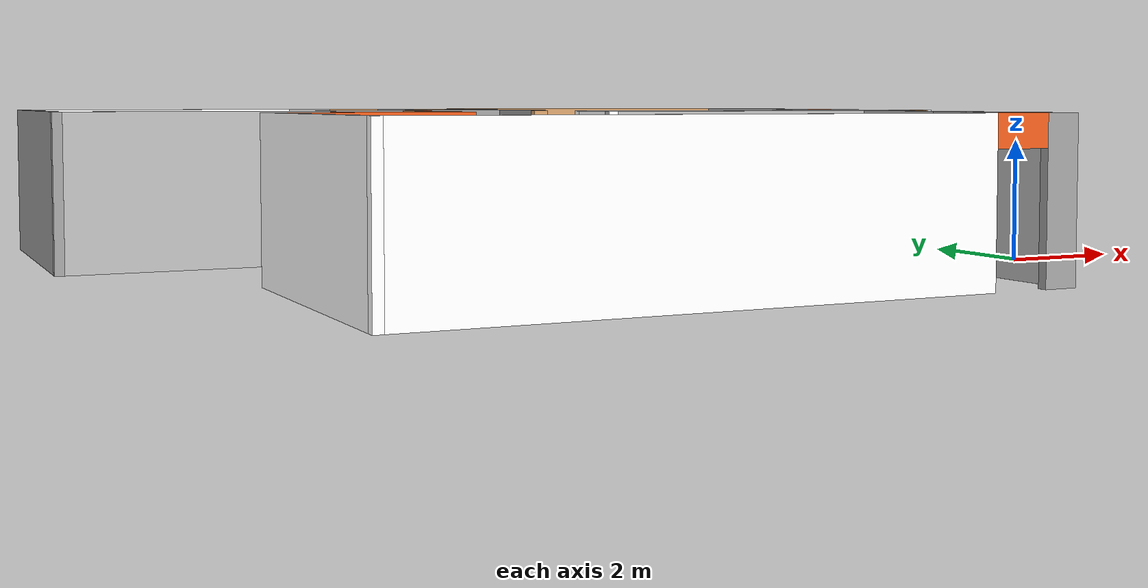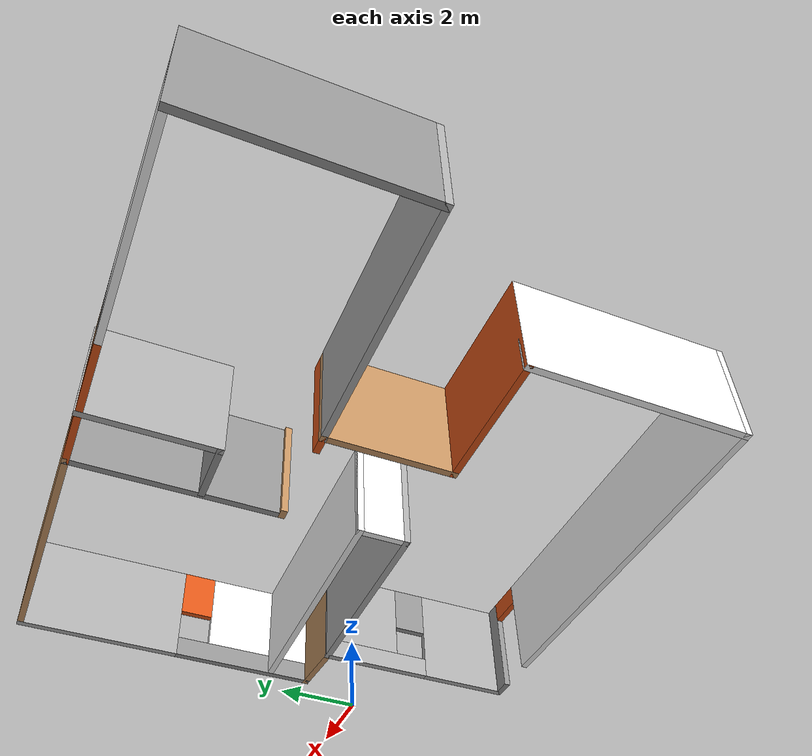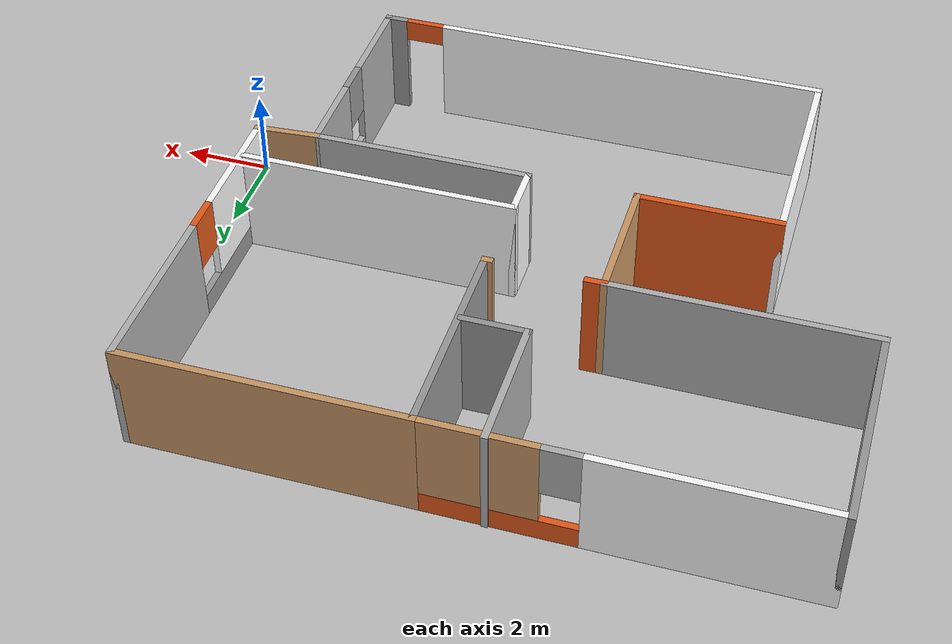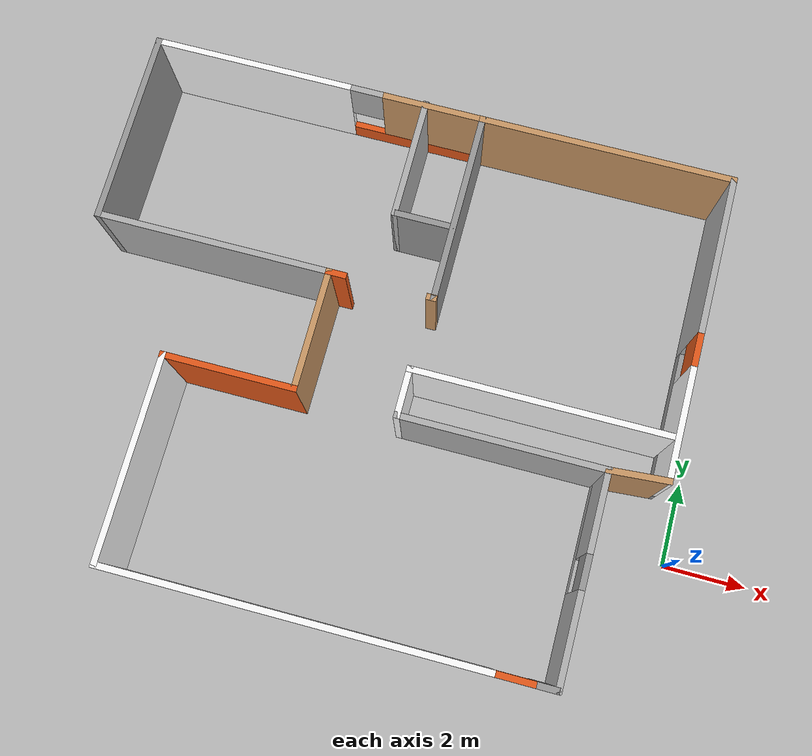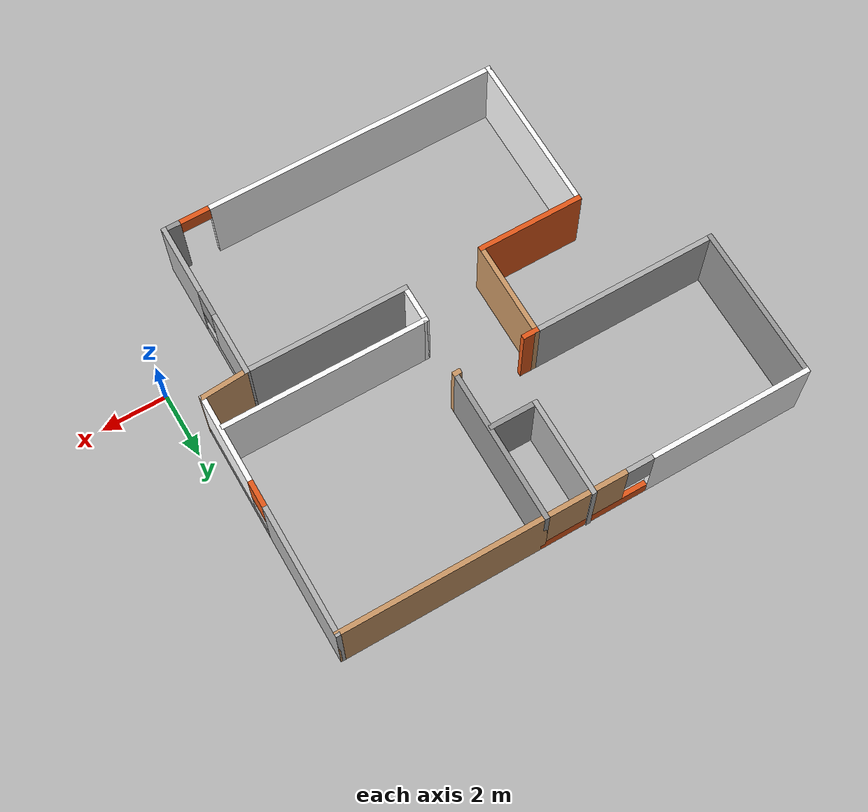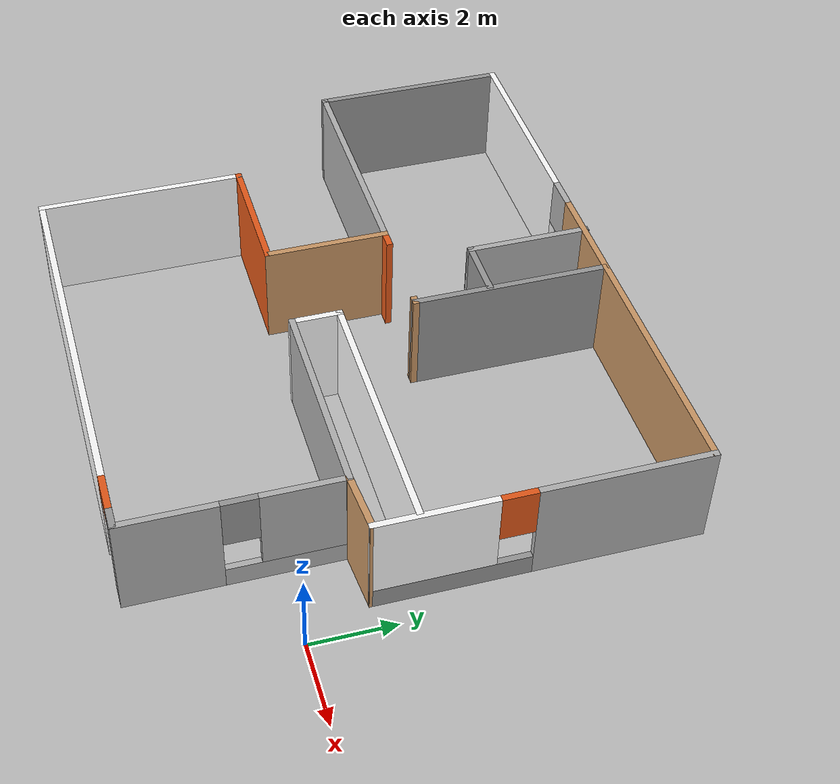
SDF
<?xml version='1.0' encoding='utf-8'?>

<sdf version="1.7">

  <model name="ismail_home2">
    <pose>-7.46616 2.78789 0 0 -0 0</pose>
    <link name="Wall_1">
      <pose>5.45884 -3.74057 0 0 -0 1.5708</pose>
      <visual name="Wall_1_Visual_0">
        <pose>-1.38369 0 1.25 0 -0 0</pose>
        <geometry>
          <box>
            <size>2.23262 0.15 2.5</size>
          </box>
        </geometry>
        <material>
          <ambient>0.5 0.5 0.5 1</ambient>
          <diffuse>0.7 0.7 0.7 1</diffuse>
          <specular>0.1 0.1 0.1 1</specular>
        </material>
        <meta>
          <layer>0</layer>
        </meta>
      </visual>
      <collision name="Wall_1_Collision_0">
        <geometry>
          <box>
            <size>2.23262 0.15 2.5</size>
          </box>
        </geometry>
        <pose>-1.38369 0 1.25 0 -0 0</pose>
      </collision>
      <visual name="Wall_1_Visual_1">
        <pose>1.11631 0 0.25 0 -0 0</pose>
        <geometry>
          <box>
            <size>2.76738 0.15 0.5</size>
          </box>
        </geometry>
        <material>
          <ambient>0.5 0.5 0.5 1</ambient>
          <diffuse>0.7 0.7 0.7 1</diffuse>
          <specular>0.1 0.1 0.1 1</specular>
        </material>
        <meta>
          <layer>0</layer>
        </meta>
      </visual>
      <collision name="Wall_1_Collision_1">
        <geometry>
          <box>
            <size>2.76738 0.15 0.5</size>
          </box>
        </geometry>
        <pose>1.11631 0 0.25 0 -0 0</pose>
      </collision>
      <visual name="Wall_1_Visual_2">
        <pose>1.51631 0 1.5 0 -0 0</pose>
        <geometry>
          <box>
            <size>1.96738 0.15 2</size>
          </box>
        </geometry>
        <material>
          <ambient>0.5 0.5 0.5 1</ambient>
          <diffuse>0.7 0.7 0.7 1</diffuse>
          <specular>0.1 0.1 0.1 1</specular>
          </material>
        <meta>
          <layer>0</layer>
        </meta>
      </visual>
      <collision name="Wall_1_Collision_2">
        <geometry>
          <box>
            <size>1.96738 0.15 2</size>
          </box>
        </geometry>
        <pose>1.51631 0 1.5 0 -0 0</pose>
      </collision>
      <visual name="Wall_1_Visual_3">
        <pose>0.132618 0 1.9 0 -0 0</pose>
        <geometry>
          <box>
            <size>0.8 0.15 1.2</size>
          </box>
        </geometry>
        <material>
          <ambient>0.4 0.4 0.4 1</ambient><diffuse>0.6 0.6 0.6 1</diffuse><specular>0.2 0.2 0.2 1</specular></material>
        <meta>
          <layer>0</layer>
        </meta>
      </visual>
      <collision name="Wall_1_Collision_3">
        <geometry>
          <box>
            <size>0.8 0.15 1.2</size>
          </box>
        </geometry>
        <pose>0.132618 0 1.9 0 -0 0</pose>
      </collision>
    </link>
    <link name="Wall_10">
      <collision name="Wall_10_Collision">
        <geometry>
          <box>
            <size>5 0.15 2.5</size>
          </box>
        </geometry>
        <pose>0 0 1.25 0 -0 0</pose>
      </collision>
      <visual name="Wall_10_Visual">
        <pose>0 0 1.25 0 -0 0</pose>
        <geometry>
          <box>
            <size>5 0.15 2.5</size>
          </box>
        </geometry>
        <material>
          <ambient>0.9 0.9 0.9 1</ambient><diffuse>1.0 1.0 1.0 1</diffuse><specular>0.1 0.1 0.1 1</specular></material>
        <meta>
          <layer>0</layer>
        </meta>
      </visual>
      <pose>-4.89116 -3.74057 0 0 -0 1.5708</pose>
    </link>
    <link name="Wall_11">
      <collision name="Wall_11_Collision">
        <geometry>
          <box>
            <size>3.25 0.15 2.5</size>
          </box>
        </geometry>
        <pose>0 0 1.25 0 -0 0</pose>
      </collision>
      <visual name="Wall_11_Visual">
        <pose>0 0 1.25 0 -0 0</pose>
        <geometry>
          <box>
            <size>3.25 0.15 2.5</size>
          </box>
        </geometry>
        <material>
          <ambient>0.8 0.25 0.0 1</ambient><diffuse>0.9 0.35 0.1 1</diffuse><specular>0.1 0.1 0.1 1</specular></material>
        <meta>
          <layer>0</layer>
        </meta>
      </visual>
      <pose>-3.34116 -1.31557 0 0 -0 0</pose>
    </link>
    <link name="Wall_12">
      <collision name="Wall_12_Collision">
        <geometry>
          <box>
            <size>3 0.15 2.5</size>
          </box>
        </geometry>
        <pose>0 0 1.25 0 -0 0</pose>
      </collision>
      <visual name="Wall_12_Visual">
        <pose>0 0 1.25 0 -0 0</pose>
        <geometry>
          <box>
            <size>3 0.15 2.5</size>
          </box>
        </geometry>
        <material>
          <ambient>0.6 0.4 0.2 1</ambient><diffuse>0.8 0.6 0.4 1</diffuse><specular>0.2 0.2 0.2 1</specular></material>
        <meta>
          <layer>0</layer>
        </meta>
      </visual>
      <pose>-1.79116 0.109434 0 0 -0 1.5708</pose>
    </link>
    <link name="Wall_13">
      <collision name="Wall_13_Collision">
        <geometry>
          <box>
            <size>5.75 0.15 2.5</size>
          </box>
        </geometry>
        <pose>0 0 1.25 0 -0 0</pose>
      </collision>
      <visual name="Wall_13_Visual">
        <pose>0 0 1.25 0 -0 0</pose>
        <geometry>
          <box>
            <size>5.75 0.15 2.5</size>
          </box>
        </geometry>
        <material>
          <ambient>0.5 0.5 0.5 1</ambient><diffuse>0.7 0.7 0.7 1</diffuse><specular>0.1 0.1 0.1 1</specular></material>
        <meta>
          <layer>0</layer>
        </meta>
      </visual>
      <pose>-4.59116 1.53443 0 0 -0 3.14159</pose>
    </link>
    <link name="Wall_14">
      <collision name="Wall_14_Collision">
        <geometry>
          <box>
            <size>4.75 0.15 2.5</size>
          </box>
        </geometry>
        <pose>0 0 1.25 0 -0 0</pose>
      </collision>
      <visual name="Wall_14_Visual">
        <pose>0 0 1.25 0 -0 0</pose>
        <geometry>
          <box>
            <size>4.75 0.15 2.5</size>
          </box>
        </geometry>
        <material>
          <ambient>0.4 0.4 0.4 1</ambient><diffuse>0.6 0.6 0.6 1</diffuse><specular>0.2 0.2 0.2 1</specular></material>
        <meta>
          <layer>0</layer>
        </meta>
      </visual>
      <pose>-7.39116 3.83443 0 0 -0 1.5708</pose>
    </link>
    <link name="Wall_15">
      <pose>-3.34116 6.13443 0 0 -0 0</pose>
      <visual name="Wall_15_Visual_0">
        <pose>-1.66662 0 1.25 0 -0 0</pose>
        <geometry>
          <box>
            <size>4.91676 0.15 2.5</size>
          </box>
        </geometry>
        <material>
          <ambient>0.9 0.9 0.9 1</ambient><diffuse>1.0 1.0 1.0 1</diffuse><specular>0.1 0.1 0.1 1</specular></material>
        <meta>
          <layer>0</layer>
        </meta>
      </visual>
      <collision name="Wall_15_Collision_0">
        <geometry>
          <box>
            <size>4.91676 0.15 2.5</size>
          </box>
        </geometry>
        <pose>-1.66662 0 1.25 0 -0 0</pose>
      </collision>
      <visual name="Wall_15_Visual_1">
        <pose>2.45838 0 0.25 0 -0 0</pose>
        <geometry>
          <box>
            <size>3.33324 0.15 0.5</size>
          </box>
        </geometry>
        <material>
          <ambient>0.8 0.25 0.0 1</ambient><diffuse>0.9 0.35 0.1 1</diffuse><specular>0.1 0.1 0.1 1</specular></material>
        <meta>
          <layer>0</layer>
        </meta>
      </visual>
      <collision name="Wall_15_Collision_1">
        <geometry>
          <box>
            <size>3.33324 0.15 0.5</size>
          </box>
        </geometry>
        <pose>2.45838 0 0.25 0 -0 0</pose>
      </collision>
      <visual name="Wall_15_Visual_2">
        <pose>2.85838 0 1.5 0 -0 0</pose>
        <geometry>
          <box>
            <size>2.53324 0.15 2</size>
          </box>
        </geometry>
        <material>
          <ambient>0.6 0.4 0.2 1</ambient><diffuse>0.8 0.6 0.4 1</diffuse><specular>0.2 0.2 0.2 1</specular></material>
        <meta>
          <layer>0</layer>
        </meta>
      </visual>
      <collision name="Wall_15_Collision_2">
        <geometry>
          <box>
            <size>2.53324 0.15 2</size>
          </box>
        </geometry>
        <pose>2.85838 0 1.5 0 -0 0</pose>
      </collision>
      <visual name="Wall_15_Visual_3">
        <pose>1.19176 0 1.9 0 -0 0</pose>
        <geometry>
          <box>
            <size>0.8 0.15 1.2</size>
          </box>
        </geometry>
        <material>
          <ambient>0.5 0.5 0.5 1</ambient><diffuse>0.7 0.7 0.7 1</diffuse><specular>0.1 0.1 0.1 1</specular></material>
        <meta>
          <layer>0</layer>
        </meta>
      </visual>
      <collision name="Wall_15_Collision_3">
        <geometry>
          <box>
            <size>0.8 0.15 1.2</size>
          </box>
        </geometry>
        <pose>1.19176 0 1.9 0 -0 0</pose>
      </collision>
    </link>
    <link name="Wall_16">
      <collision name="Wall_16_Collision">
        <geometry>
          <box>
            <size>4.75 0.15 2.5</size>
          </box>
        </geometry>
        <pose>0 0 1.25 0 -0 0</pose>
      </collision>
      <visual name="Wall_16_Visual">
        <pose>0 0 1.25 0 -0 0</pose>
        <geometry>
          <box>
            <size>4.75 0.15 2.5</size>
          </box>
        </geometry>
        <material>
          <ambient>0.4 0.4 0.4 1</ambient><diffuse>0.6 0.6 0.6 1</diffuse><specular>0.2 0.2 0.2 1</specular></material>
        <meta>
          <layer>0</layer>
        </meta>
      </visual>
      <pose>0.708843 3.83443 0 0 -0 -1.5708</pose>
    </link>
    <link name="Wall_22">
      <collision name="Wall_22_Collision">
        <geometry>
          <box>
            <size>1.25 0.15 2.5</size>
          </box>
        </geometry>
        <pose>0 0 1.25 0 -0 0</pose>
      </collision>
      <visual name="Wall_22_Visual">
        <pose>0 0 1.25 0 -0 0</pose>
        <geometry>
          <box>
            <size>1.25 0.15 2.5</size>
          </box>
        </geometry>
        <material>
          <ambient>0.9 0.9 0.9 1</ambient><diffuse>1.0 1.0 1.0 1</diffuse><specular>0.1 0.1 0.1 1</specular></material>
        <meta>
          <layer>0</layer>
        </meta>
      </visual>
      <pose>0.608843 -0.765566 0 0 -0 1.5708</pose>
    </link>
    <link name="Wall_24">
      <collision name="Wall_24_Collision">
        <geometry>
          <box>
            <size>0.5 0.15 2.5</size>
          </box>
        </geometry>
        <pose>0 0 1.25 0 -0 0</pose>
      </collision>
      <visual name="Wall_24_Visual">
        <pose>0 0 1.25 0 -0 0</pose>
        <geometry>
          <box>
            <size>0.5 0.15 2.5</size>
          </box>
        </geometry>
        <material>
          <ambient>0.8 0.25 0.0 1</ambient><diffuse>0.9 0.35 0.1 1</diffuse><specular>0.1 0.1 0.1 1</specular></material>
        <meta>
          <layer>0</layer>
        </meta>
      </visual>
      <pose>-1.61616 1.53443 0 0 -0 0</pose>
    </link>
    <link name="Wall_27">
      <collision name="Wall_27_Collision">
        <geometry>
          <box>
            <size>0.25 0.15 2.5</size>
          </box>
        </geometry>
        <pose>0 0 1.25 0 -0 0</pose>
      </collision>
      <visual name="Wall_27_Visual">
        <pose>0 0 1.25 0 -0 0</pose>
        <geometry>
          <box>
            <size>0.25 0.15 2.5</size>
          </box>
        </geometry>
        <material>
          <ambient>0.6 0.4 0.2 1</ambient><diffuse>0.8 0.6 0.4 1</diffuse><specular>0.2 0.2 0.2 1</specular></material>
        <meta>
          <layer>0</layer>
        </meta>
      </visual>
      <pose>0.658843 1.53443 0 0 -0 3.14159</pose>
    </link>
    <link name="Wall_3">
      <collision name="Wall_3_Collision">
        <geometry>
          <box>
            <size>5 0.15 2.5</size>
          </box>
        </geometry>
        <pose>0 0 1.25 0 -0 0</pose>
      </collision>
      <visual name="Wall_3_Visual">
        <pose>0 0 1.25 0 -0 0</pose>
        <geometry>
          <box>
            <size>5 0.15 2.5</size>
          </box>
        </geometry>
        <material>
          <ambient>0.5 0.5 0.5 1</ambient><diffuse>0.7 0.7 0.7 1</diffuse><specular>0.1 0.1 0.1 1</specular></material>
        <meta>
          <layer>0</layer>
        </meta>
      </visual>
      <pose>3.03384 -1.31557 0 0 -0 3.14159</pose>
    </link>
    <link name="Wall_6">
      <pose>0.283843 -6.16557 0 0 -0 3.14159</pose>
      <visual name="Wall_6_Visual_0">
        <pose>-4.97475 0 1.25 0 -0 0</pose>
        <geometry>
          <box>
            <size>0.550492 0.15 2.5</size>
          </box>
        </geometry>
        <material>
          <ambient>0.4 0.4 0.4 1</ambient><diffuse>0.6 0.6 0.6 1</diffuse><specular>0.2 0.2 0.2 1</specular></material>
        <meta>
          <layer>0</layer>
        </meta>
      </visual>
      <collision name="Wall_6_Collision_0">
        <geometry>
          <box>
            <size>0.550492 0.15 2.5</size>
          </box>
        </geometry>
        <pose>-4.97475 0 1.25 0 -0 0</pose>
      </collision>
      <visual name="Wall_6_Visual_1">
        <pose>0.725246 0 1.25 0 -0 0</pose>
        <geometry>
          <box>
            <size>9.04951 0.15 2.5</size>
          </box>
        </geometry>
        <material>
          <ambient>0.9 0.9 0.9 1</ambient><diffuse>1.0 1.0 1.0 1</diffuse><specular>0.1 0.1 0.1 1</specular></material>
        <meta>
          <layer>0</layer>
        </meta>
      </visual>
      <collision name="Wall_6_Collision_1">
        <geometry>
          <box>
            <size>9.04951 0.15 2.5</size>
          </box>
        </geometry>
        <pose>0.725246 0 1.25 0 -0 0</pose>
      </collision>
      <visual name="Wall_6_Visual_2">
        <pose>-4.24951 0 2.25 0 -0 0</pose>
        <geometry>
          <box>
            <size>0.9 0.15 0.5</size>
          </box>
        </geometry>
        <material>
          <ambient>0.8 0.25 0.0 1</ambient><diffuse>0.9 0.35 0.1 1</diffuse><specular>0.1 0.1 0.1 1</specular></material>
        <meta>
          <layer>0</layer>
        </meta>
      </visual>
      <collision name="Wall_6_Collision_2">
        <geometry>
          <box>
            <size>0.9 0.15 0.5</size>
          </box>
        </geometry>
        <pose>-4.24951 0 2.25 0 -0 0</pose>
      </collision>
    </link>
    <link name="Wall_67">
      <collision name="Wall_67_Collision">
        <geometry>
          <box>
            <size>6.25 0.15 2.5</size>
          </box>
        </geometry>
        <pose>0 0 1.25 0 -0 0</pose>
      </collision>
      <visual name="Wall_67_Visual">
        <pose>0 0 1.25 0 -0 0</pose>
        <geometry>
          <box>
            <size>6.25 0.15 2.5</size>
          </box>
        </geometry>
        <material>
          <ambient>0.6 0.4 0.2 1</ambient><diffuse>0.8 0.6 0.4 1</diffuse><specular>0.2 0.2 0.2 1</specular></material>
        <meta>
          <layer>0</layer>
        </meta>
      </visual>
      <pose>3.75884 6.13443 0 0 -0 0</pose>
    </link>
    <link name="Wall_68">
      <pose>6.80884 2.45943 0 0 -0 -1.5708</pose>
      <visual name="Wall_68_Visual_0">
        <pose>-1.78402 0 1.25 0 -0 0</pose>
        <geometry>
          <box>
            <size>3.93196 0.15 2.5</size>
          </box>
        </geometry>
        <material>
          <ambient>0.5 0.5 0.5 1</ambient><diffuse>0.7 0.7 0.7 1</diffuse><specular>0.1 0.1 0.1 1</specular></material>
        <meta>
          <layer>0</layer>
        </meta>
      </visual>
      <collision name="Wall_68_Collision_0">
        <geometry>
          <box>
            <size>3.93196 0.15 2.5</size>
          </box>
        </geometry>
        <pose>-1.78402 0 1.25 0 -0 0</pose>
      </collision>
      <visual name="Wall_68_Visual_1">
        <pose>1.96598 0 0.25 0 -0 0</pose>
        <geometry>
          <box>
            <size>3.56804 0.15 0.5</size>
          </box>
        </geometry>
        <material>
          <ambient>0.4 0.4 0.4 1</ambient><diffuse>0.6 0.6 0.6 1</diffuse><specular>0.2 0.2 0.2 1</specular></material>
        <meta>
          <layer>0</layer>
        </meta>
      </visual>
      <collision name="Wall_68_Collision_1">
        <geometry>
          <box>
            <size>3.56804 0.15 0.5</size>
          </box>
        </geometry>
        <pose>1.96598 0 0.25 0 -0 0</pose>
      </collision>
      <visual name="Wall_68_Visual_2">
        <pose>2.36598 0 1.5 0 -0 0</pose>
        <geometry>
          <box>
            <size>2.76804 0.15 2</size>
          </box>
        </geometry>
        <material>
          <ambient>0.9 0.9 0.9 1</ambient><diffuse>1.0 1.0 1.0 1</diffuse><specular>0.1 0.1 0.1 1</specular></material>
        <meta>
          <layer>0</layer>
        </meta>
      </visual>
      <collision name="Wall_68_Collision_2">
        <geometry>
          <box>
            <size>2.76804 0.15 2</size>
          </box>
        </geometry>
        <pose>2.36598 0 1.5 0 -0 0</pose>
      </collision>
      <visual name="Wall_68_Visual_3">
        <pose>0.581962 0 1.9 0 -0 0</pose>
        <geometry>
          <box>
            <size>0.8 0.15 1.2</size>
          </box>
        </geometry>
        <material>
          <ambient>0.8 0.25 0.0 1</ambient><diffuse>0.9 0.35 0.1 1</diffuse><specular>0.1 0.1 0.1 1</specular></material>
        <meta>
          <layer>0</layer>
        </meta>
      </visual>
      <collision name="Wall_68_Collision_3">
        <geometry>
          <box>
            <size>0.8 0.15 1.2</size>
          </box>
        </geometry>
        <pose>0.581962 0 1.9 0 -0 0</pose>
      </collision>
    </link>
    <link name="Wall_69">
      <collision name="Wall_69_Collision">
        <geometry>
          <box>
            <size>1.5037 0.15 2.5</size>
          </box>
        </geometry>
        <pose>0 0 1.25 0 -0 0</pose>
      </collision>
      <visual name="Wall_69_Visual">
        <pose>0 0 1.25 0 -0 0</pose>
        <geometry>
          <box>
            <size>1.5037 0.15 2.5</size>
          </box>
        </geometry>
        <material>
          <ambient>0.6 0.4 0.2 1</ambient><diffuse>0.8 0.6 0.4 1</diffuse><specular>0.2 0.2 0.2 1</specular></material>
        <meta>
          <layer>0</layer>
        </meta>
      </visual>
      <pose>6.13384 -1.26557 0 0 -0 -3.06765</pose>
    </link>
    <link name="Wall_71">
      <collision name="Wall_71_Collision">
        <geometry>
          <box>
            <size>3 0.15 2.5</size>
          </box>
        </geometry>
        <pose>0 0 1.25 0 -0 0</pose>
      </collision>
      <visual name="Wall_71_Visual">
        <pose>0 0 1.25 0 -0 0</pose>
        <geometry>
          <box>
            <size>3 0.15 2.5</size>
          </box>
        </geometry>
        <material>
          <ambient>0.5 0.5 0.5 1</ambient><diffuse>0.7 0.7 0.7 1</diffuse><specular>0.1 0.1 0.1 1</specular></material>
        <meta>
          <layer>0</layer>
        </meta>
      </visual>
      <pose>-0.701466 4.74057 0 0 -0 -1.5708</pose>
    </link>
    <link name="Wall_72">
      <collision name="Wall_72_Collision">
        <geometry>
          <box>
            <size>1.5 0.15 2.5</size>
          </box>
        </geometry>
        <pose>0 0 1.25 0 -0 0</pose>
      </collision>
      <visual name="Wall_72_Visual">
        <pose>0 0 1.25 0 -0 0</pose>
        <geometry>
          <box>
            <size>1.5 0.15 2.5</size>
          </box>
        </geometry>
        <material>
          <ambient>0.4 0.4 0.4 1</ambient><diffuse>0.6 0.6 0.6 1</diffuse><specular>0.2 0.2 0.2 1</specular></material>
        <meta>
          <layer>0</layer>
        </meta>
      </visual>
      <pose>-0.026466 3.31557 0 0 -0 0</pose>
    </link>
    <link name="Wall_74">
      <collision name="Wall_74_Collision">
        <geometry>
          <box>
            <size>6.25 0.15 2.5</size>
          </box>
        </geometry>
        <pose>0 0 1.25 0 -0 0</pose>
      </collision>
      <visual name="Wall_74_Visual">
        <pose>0 0 1.25 0 -0 0</pose>
        <geometry>
          <box>
            <size>6.25 0.15 2.5</size>
          </box>
        </geometry>
        <material>
          <ambient>0.9 0.9 0.9 1</ambient><diffuse>1.0 1.0 1.0 1</diffuse><specular>0.1 0.1 0.1 1</specular></material>
        <meta>
          <layer>0</layer>
        </meta>
      </visual>
      <pose>3.65884 -0.215566 0 0 -0 0</pose>
    </link>
    <static>1</static>
  </model>
</sdf>
